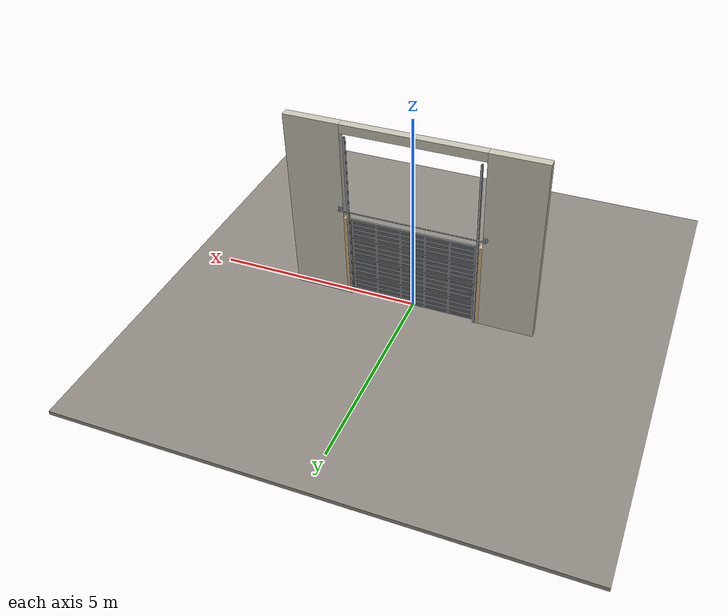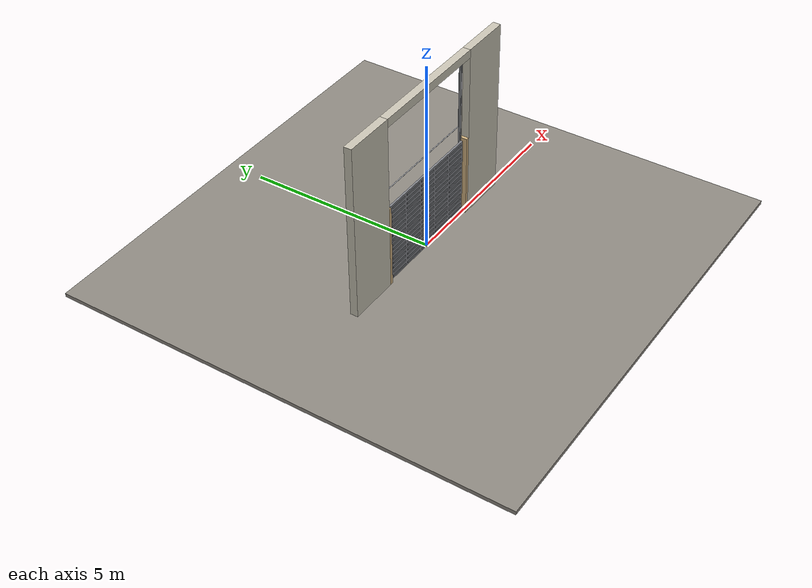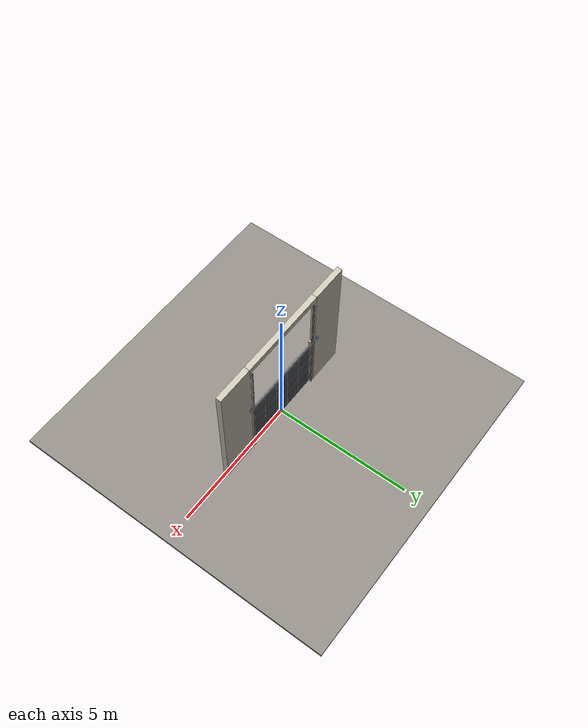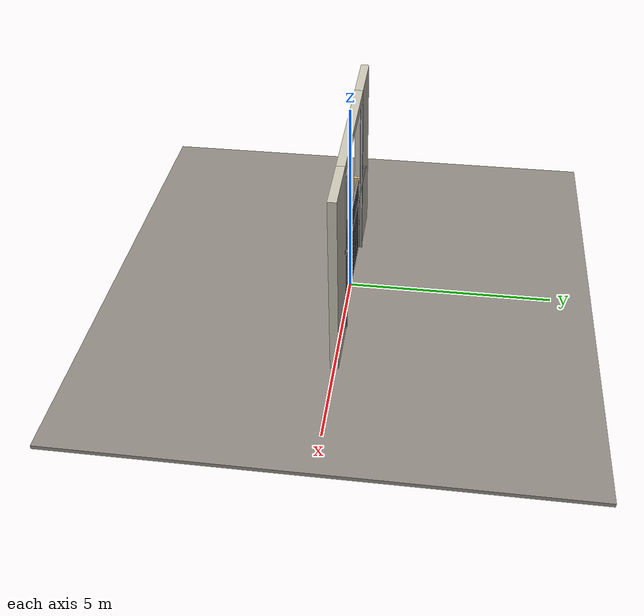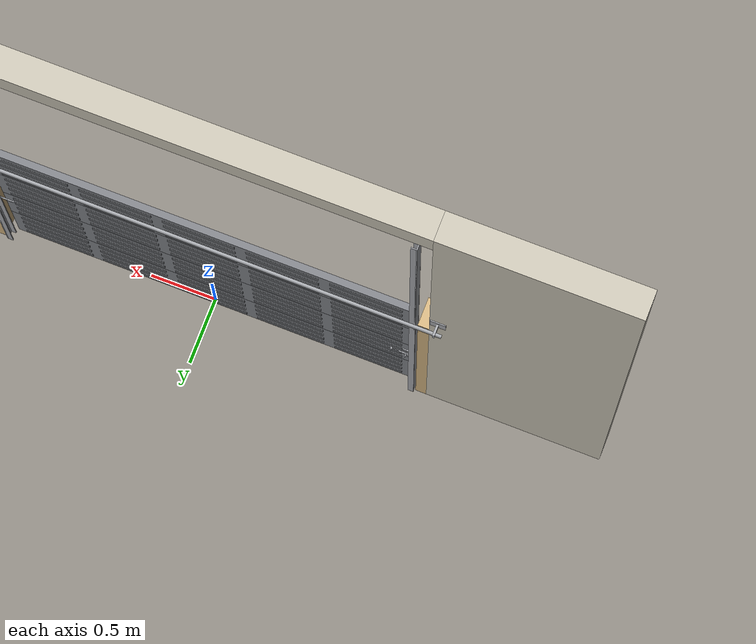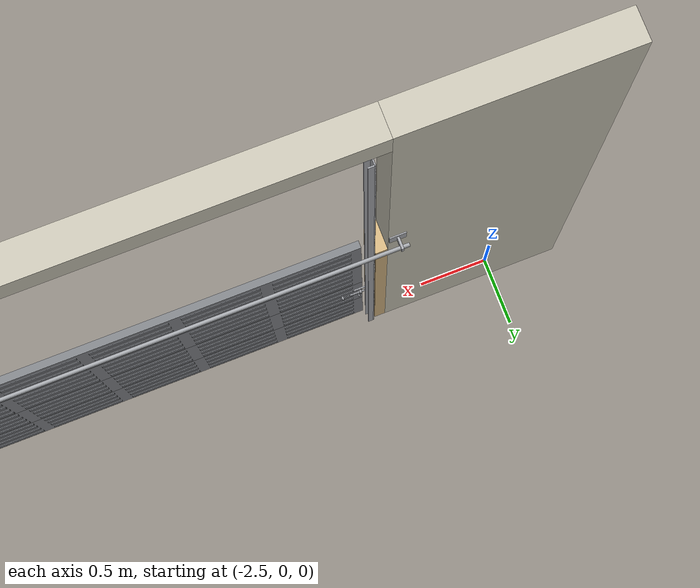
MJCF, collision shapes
<?xml version="1.0" ?>
<mujoco model="db0213_garage_sectional_simple">
  <compiler angle="radian" meshdir="../../hardware" texturedir="../../textures" autolimits="true" inertiafromgeom="false"/>
  <option timestep="0.002" integrator="implicitfast" cone="elliptic" impratio="10" noslip_iterations="3">
    <flag multiccd="enable"/>
  </option>
  <size memory="16M"/>
  <default>
    <geom condim="4" solref="0.005 1" solimp="0.95 0.99 0.001"/>
    <joint solreflimit="0.005 1" solimplimit="0.95 0.99 0.001"/>
    <tendon solreflimit="0.005 1"/>
    <equality solref="0.002 1"/>
  </default>
  <visual>
    <headlight ambient="0.4 0.4 0.4" diffuse="0.7 0.7 0.7" specular="0.2 0.2 0.2"/>
    <quality shadowsize="4096"/>
    <map znear="0.01" zfar="60"/>
  </visual>
  <asset>
    <mesh name="lever_01c630149d" file="lever_01c630149d.obj"/>
    <material name="mat_floor" rgba="0.55 0.53 0.5 1" specular="0.2" shininess="0.15" reflectance="0"/>
    <material name="mat_wall" rgba="0.78 0.76 0.7 1" specular="0.2" shininess="0.1" reflectance="0"/>
    <material name="mat_frame" rgba="0.82 0.7 0.5 1" specular="0.2" shininess="0.45" reflectance="0"/>
    <material name="mat_track" rgba="0.65 0.66 0.68 1" specular="0.74" shininess="0.5" reflectance="0.36"/>
    <material name="mat_section_0" rgba="0.5 0.51 0.53 1" specular="0.23" shininess="0.63" reflectance="0.02"/>
    <material name="mat_section_0_panel" rgba="0.46 0.469 0.488 1" specular="0.23" shininess="0.63" reflectance="0.02"/>
    <material name="mat_section_1" rgba="0.5 0.51 0.53 1" specular="0.23" shininess="0.63" reflectance="0.02"/>
    <material name="mat_section_1_panel" rgba="0.46 0.469 0.488 1" specular="0.23" shininess="0.63" reflectance="0.02"/>
    <material name="mat_hinge_line" rgba="0.2 0.2 0.2 1" specular="0.2" shininess="0.3" reflectance="0"/>
    <material name="mat_section_2" rgba="0.5 0.51 0.53 1" specular="0.23" shininess="0.63" reflectance="0.02"/>
    <material name="mat_section_2_panel" rgba="0.46 0.469 0.488 1" specular="0.23" shininess="0.63" reflectance="0.02"/>
    <material name="mat_section_3" rgba="0.5 0.51 0.53 1" specular="0.23" shininess="0.63" reflectance="0.02"/>
    <material name="mat_section_3_panel" rgba="0.46 0.469 0.488 1" specular="0.23" shininess="0.63" reflectance="0.02"/>
    <material name="mat_spring" rgba="0.55 0.56 0.58 1" specular="0.8" shininess="0.55" reflectance="0.4"/>
    <material name="mat_op_black_matte_metal" rgba="0.05 0.05 0.05 1" specular="0.38" shininess="0.3" reflectance="0.12"/>
    <material name="mat_trim" rgba="0.85 0.66 0.3 1" specular="0.8" shininess="0.75" reflectance="0.4"/>
    <material name="mat_lockbar" rgba="0.65 0.66 0.68 1" specular="0.74" shininess="0.5" reflectance="0.36"/>
    <material name="mat_slidelock" rgba="0.65 0.66 0.68 1" specular="0.74" shininess="0.5" reflectance="0.36"/>
    <texture name="skybox" type="skybox" builtin="gradient" rgb1="0.6 0.7 0.85" rgb2="0.9 0.92 0.95" width="256" height="256"/>
  </asset>
  <worldbody>
    <light name="sun" pos="1.5 -2.5 4" dir="-0.3 0.5 -0.8" directional="true" diffuse="0.8 0.8 0.8" specular="0.3 0.3 0.3" castshadow="true"/>
    <light name="fill" pos="-1.5 2.5 3" dir="0.3 -0.5 -0.7" directional="true" diffuse="0.35 0.35 0.4" castshadow="false"/>
    <camera name="robot_view" pos="0 -3.53125 2.07875" xyaxes="1 0 0 0 0.26963 0.962964" fovy="52"/>
    <camera name="far_view" pos="0 3.53125 2.07875" xyaxes="-1 0 0 0 -0.26963 0.962964" fovy="52"/>
    <camera name="iso" pos="2.68375 -2.96625 2.64375" xyaxes="0.741536 0.670913 0 -0.242917 0.268487 0.932151" fovy="46"/>
    <camera name="detail_handle" pos="0.2115 -1.165 1.25" xyaxes="0.975133 0.221621 0 -0.065674 0.288965 0.955084" fovy="38"/>
    <geom name="floor" type="box" size="6 6 0.05" pos="0 0 -0.05" material="mat_floor" group="0" contype="1" conaffinity="1" friction="0.8 0.005 0.0001" density="2400"/>
    <geom name="wall_left" type="box" size="0.665 0.1 2.305" pos="-2.335 0 2.305" material="mat_wall" group="0" contype="1" conaffinity="1" friction="0.6 0.005 0.0001" density="800"/>
    <geom name="wall_right" type="box" size="0.665 0.1 2.305" pos="2.335 0 2.305" material="mat_wall" group="0" contype="1" conaffinity="1" friction="0.6 0.005 0.0001" density="800"/>
    <geom name="wall_header" type="box" size="1.67 0.1 0.11" pos="0 0 4.5" material="mat_wall" group="0" contype="1" conaffinity="1" friction="0.6 0.005 0.0001" density="800"/>
    <geom name="garage_jamb_l" type="box" size="0.04 0.1 1.09" pos="-1.63 0 1.09" material="mat_frame" group="0" contype="1" conaffinity="1" friction="0.6 0.005 0.0001" density="400"/>
    <geom name="garage_jamb_r" type="box" size="0.04 0.1 1.09" pos="1.63 0 1.09" material="mat_frame" group="0" contype="1" conaffinity="1" friction="0.6 0.005 0.0001" density="400"/>
    <geom name="track_l" type="box" size="0.004 0.033 2.155" pos="-1.575 0.085 2.155" material="mat_track" group="0" contype="1" conaffinity="1" friction="0.6 0.005 0.0001" density="7850"/>
    <geom name="track_l_flange_n" type="box" size="0.022 0.004 2.155" pos="-1.557 0.056 2.155" material="mat_track" group="0" contype="1" conaffinity="1" friction="0.6 0.005 0.0001" density="7850"/>
    <geom name="track_l_flange_p" type="box" size="0.022 0.004 2.155" pos="-1.557 0.114 2.155" material="mat_track" group="0" contype="1" conaffinity="1" friction="0.6 0.005 0.0001" density="7850"/>
    <geom name="track_r" type="box" size="0.004 0.033 2.155" pos="1.575 0.085 2.155" material="mat_track" group="0" contype="1" conaffinity="1" friction="0.6 0.005 0.0001" density="7850"/>
    <geom name="track_r_flange_n" type="box" size="0.022 0.004 2.155" pos="1.557 0.056 2.155" material="mat_track" group="0" contype="1" conaffinity="1" friction="0.6 0.005 0.0001" density="7850"/>
    <geom name="track_r_flange_p" type="box" size="0.022 0.004 2.155" pos="1.557 0.114 2.155" material="mat_track" group="0" contype="1" conaffinity="1" friction="0.6 0.005 0.0001" density="7850"/>
    <geom name="torsion_shaft" type="cylinder" size="0.013 1.78" pos="0 0.17 2.43" quat="0.707107 0 0.707107 0" material="mat_track" group="0" contype="1" conaffinity="1" friction="0.6 0.005 0.0001" density="7850"/>
    <geom name="torsion_bearing_plate_l" type="box" size="0.055 0.004 0.055" pos="-1.73 0.104 2.43" material="mat_track" group="1" contype="0" conaffinity="0" density="7850"/>
    <geom name="torsion_bearing_arm_l" type="box" size="0.008 0.049 0.03" pos="-1.73 0.139 2.43" material="mat_track" group="1" contype="0" conaffinity="0" density="7850"/>
    <geom name="torsion_bearing_plate_r" type="box" size="0.055 0.004 0.055" pos="1.73 0.104 2.43" material="mat_track" group="1" contype="0" conaffinity="0" density="7850"/>
    <geom name="torsion_bearing_arm_r" type="box" size="0.008 0.049 0.03" pos="1.73 0.139 2.43" material="mat_track" group="1" contype="0" conaffinity="0" density="7850"/>
    <geom name="slide_lock_keeper_leg_n" type="box" size="0.007 0.0025 0.0155" pos="-1.57 0.0365 0.82025" quat="0 0 -0.707107 0.707107" material="mat_track" group="0" contype="1" conaffinity="1" friction="0.6 0.005 0.0001" density="7800"/>
    <geom name="slide_lock_keeper_leg_p" type="box" size="0.007 0.0025 0.0155" pos="-1.57 0.0365 0.79725" quat="0 0 -0.707107 0.707107" material="mat_track" group="0" contype="1" conaffinity="1" friction="0.6 0.005 0.0001" density="7800"/>
    <geom name="slide_lock_keeper_bridge" type="box" size="0.007 0.014 0.0025" pos="-1.57 0.0235 0.80875" quat="0 0 -0.707107 0.707107" material="mat_track" group="0" contype="1" conaffinity="1" friction="0.6 0.005 0.0001" density="7800"/>
    <geom name="slide_lock_keeper_base" type="box" size="0.015 0.02 0.001" pos="-1.57 0.051 0.80875" quat="0 0 -0.707107 0.707107" material="mat_track" group="1" contype="0" conaffinity="0" density="7800"/>
    <site name="approach_point" pos="0 -2 0" quat="1 0 0 0" size="0.05" rgba="0.2 0.9 0.2 0.5" group="4"/>
    <site name="goal_point" pos="0 2 0" quat="1 0 0 0" size="0.05" rgba="0.2 0.9 0.2 0.5" group="4"/>
    <site name="door_plane_center" pos="0 0 1.09" quat="1 0 0 0" size="0.02" rgba="0.2 0.9 0.2 0.5" group="4"/>
    <body name="door" pos="0 0 0">
      <inertial pos="-0.002369 0.000051 1.074563" mass="86.503393" quat="0.707119 -0.707094 -0.000523 -0.000591" diaginertia="32.679139132 67.260983986 99.903817033"/>
      <joint name="door_slide" type="slide" axis="0 0 1" limited="true" range="0 2.08" damping="6.358421" frictionloss="22.225584" armature="0.5"/>
      <geom name="section_0_slab" type="box" size="1.525 0.025 0.26625" pos="0 0 0.27625" material="mat_section_0" group="0" contype="1" conaffinity="1" friction="0.4 0.005 0.0001" density="1"/>
      <geom name="section_0_panel_0_n" type="box" size="0.259 0.003 0.024062" pos="-1.196 -0.028 0.084062" material="mat_section_0_panel" group="1" contype="0" conaffinity="0" density="1"/>
      <geom name="section_0_panel_0_p" type="box" size="0.259 0.003 0.024062" pos="-1.196 0.028 0.084062" material="mat_section_0_panel" group="1" contype="0" conaffinity="0" density="1"/>
      <geom name="section_0_panel_1_n" type="box" size="0.259 0.003 0.024062" pos="-0.598 -0.028 0.084062" material="mat_section_0_panel" group="1" contype="0" conaffinity="0" density="1"/>
      <geom name="section_0_panel_1_p" type="box" size="0.259 0.003 0.024062" pos="-0.598 0.028 0.084062" material="mat_section_0_panel" group="1" contype="0" conaffinity="0" density="1"/>
      <geom name="section_0_panel_2_n" type="box" size="0.259 0.003 0.024062" pos="0 -0.028 0.084062" material="mat_section_0_panel" group="1" contype="0" conaffinity="0" density="1"/>
      <geom name="section_0_panel_2_p" type="box" size="0.259 0.003 0.024062" pos="0 0.028 0.084062" material="mat_section_0_panel" group="1" contype="0" conaffinity="0" density="1"/>
      <geom name="section_0_panel_3_n" type="box" size="0.259 0.003 0.024062" pos="0.598 -0.028 0.084062" material="mat_section_0_panel" group="1" contype="0" conaffinity="0" density="1"/>
      <geom name="section_0_panel_3_p" type="box" size="0.259 0.003 0.024062" pos="0.598 0.028 0.084062" material="mat_section_0_panel" group="1" contype="0" conaffinity="0" density="1"/>
      <geom name="section_0_panel_4_n" type="box" size="0.259 0.003 0.024062" pos="1.196 -0.028 0.084062" material="mat_section_0_panel" group="1" contype="0" conaffinity="0" density="1"/>
      <geom name="section_0_panel_4_p" type="box" size="0.259 0.003 0.024062" pos="1.196 0.028 0.084062" material="mat_section_0_panel" group="1" contype="0" conaffinity="0" density="1"/>
      <geom name="section_0_panel_5_n" type="box" size="0.259 0.003 0.024062" pos="-1.196 -0.028 0.212188" material="mat_section_0_panel" group="1" contype="0" conaffinity="0" density="1"/>
      <geom name="section_0_panel_5_p" type="box" size="0.259 0.003 0.024062" pos="-1.196 0.028 0.212188" material="mat_section_0_panel" group="1" contype="0" conaffinity="0" density="1"/>
      <geom name="section_0_panel_6_n" type="box" size="0.259 0.003 0.024062" pos="-0.598 -0.028 0.212188" material="mat_section_0_panel" group="1" contype="0" conaffinity="0" density="1"/>
      <geom name="section_0_panel_6_p" type="box" size="0.259 0.003 0.024062" pos="-0.598 0.028 0.212188" material="mat_section_0_panel" group="1" contype="0" conaffinity="0" density="1"/>
      <geom name="section_0_panel_7_n" type="box" size="0.259 0.003 0.024062" pos="0 -0.028 0.212188" material="mat_section_0_panel" group="1" contype="0" conaffinity="0" density="1"/>
      <geom name="section_0_panel_7_p" type="box" size="0.259 0.003 0.024062" pos="0 0.028 0.212188" material="mat_section_0_panel" group="1" contype="0" conaffinity="0" density="1"/>
      <geom name="section_0_panel_8_n" type="box" size="0.259 0.003 0.024062" pos="0.598 -0.028 0.212188" material="mat_section_0_panel" group="1" contype="0" conaffinity="0" density="1"/>
      <geom name="section_0_panel_8_p" type="box" size="0.259 0.003 0.024062" pos="0.598 0.028 0.212188" material="mat_section_0_panel" group="1" contype="0" conaffinity="0" density="1"/>
      <geom name="section_0_panel_9_n" type="box" size="0.259 0.003 0.024062" pos="1.196 -0.028 0.212188" material="mat_section_0_panel" group="1" contype="0" conaffinity="0" density="1"/>
      <geom name="section_0_panel_9_p" type="box" size="0.259 0.003 0.024062" pos="1.196 0.028 0.212188" material="mat_section_0_panel" group="1" contype="0" conaffinity="0" density="1"/>
      <geom name="section_0_panel_10_n" type="box" size="0.259 0.003 0.024062" pos="-1.196 -0.028 0.340313" material="mat_section_0_panel" group="1" contype="0" conaffinity="0" density="1"/>
      <geom name="section_0_panel_10_p" type="box" size="0.259 0.003 0.024062" pos="-1.196 0.028 0.340313" material="mat_section_0_panel" group="1" contype="0" conaffinity="0" density="1"/>
      <geom name="section_0_panel_11_n" type="box" size="0.259 0.003 0.024062" pos="-0.598 -0.028 0.340313" material="mat_section_0_panel" group="1" contype="0" conaffinity="0" density="1"/>
      <geom name="section_0_panel_11_p" type="box" size="0.259 0.003 0.024062" pos="-0.598 0.028 0.340313" material="mat_section_0_panel" group="1" contype="0" conaffinity="0" density="1"/>
      <geom name="section_0_panel_12_n" type="box" size="0.259 0.003 0.024062" pos="0 -0.028 0.340313" material="mat_section_0_panel" group="1" contype="0" conaffinity="0" density="1"/>
      <geom name="section_0_panel_12_p" type="box" size="0.259 0.003 0.024062" pos="0 0.028 0.340313" material="mat_section_0_panel" group="1" contype="0" conaffinity="0" density="1"/>
      <geom name="section_0_panel_13_n" type="box" size="0.259 0.003 0.024062" pos="0.598 -0.028 0.340313" material="mat_section_0_panel" group="1" contype="0" conaffinity="0" density="1"/>
      <geom name="section_0_panel_13_p" type="box" size="0.259 0.003 0.024062" pos="0.598 0.028 0.340313" material="mat_section_0_panel" group="1" contype="0" conaffinity="0" density="1"/>
      <geom name="section_0_panel_14_n" type="box" size="0.259 0.003 0.024062" pos="1.196 -0.028 0.340313" material="mat_section_0_panel" group="1" contype="0" conaffinity="0" density="1"/>
      <geom name="section_0_panel_14_p" type="box" size="0.259 0.003 0.024062" pos="1.196 0.028 0.340313" material="mat_section_0_panel" group="1" contype="0" conaffinity="0" density="1"/>
      <geom name="section_0_panel_15_n" type="box" size="0.259 0.003 0.024062" pos="-1.196 -0.028 0.468437" material="mat_section_0_panel" group="1" contype="0" conaffinity="0" density="1"/>
      <geom name="section_0_panel_15_p" type="box" size="0.259 0.003 0.024062" pos="-1.196 0.028 0.468437" material="mat_section_0_panel" group="1" contype="0" conaffinity="0" density="1"/>
      <geom name="section_0_panel_16_n" type="box" size="0.259 0.003 0.024062" pos="-0.598 -0.028 0.468437" material="mat_section_0_panel" group="1" contype="0" conaffinity="0" density="1"/>
      <geom name="section_0_panel_16_p" type="box" size="0.259 0.003 0.024062" pos="-0.598 0.028 0.468437" material="mat_section_0_panel" group="1" contype="0" conaffinity="0" density="1"/>
      <geom name="section_0_panel_17_n" type="box" size="0.259 0.003 0.024062" pos="0 -0.028 0.468437" material="mat_section_0_panel" group="1" contype="0" conaffinity="0" density="1"/>
      <geom name="section_0_panel_17_p" type="box" size="0.259 0.003 0.024062" pos="0 0.028 0.468437" material="mat_section_0_panel" group="1" contype="0" conaffinity="0" density="1"/>
      <geom name="section_0_panel_18_n" type="box" size="0.259 0.003 0.024062" pos="0.598 -0.028 0.468437" material="mat_section_0_panel" group="1" contype="0" conaffinity="0" density="1"/>
      <geom name="section_0_panel_18_p" type="box" size="0.259 0.003 0.024062" pos="0.598 0.028 0.468437" material="mat_section_0_panel" group="1" contype="0" conaffinity="0" density="1"/>
      <geom name="section_0_panel_19_n" type="box" size="0.259 0.003 0.024062" pos="1.196 -0.028 0.468437" material="mat_section_0_panel" group="1" contype="0" conaffinity="0" density="1"/>
      <geom name="section_0_panel_19_p" type="box" size="0.259 0.003 0.024062" pos="1.196 0.028 0.468437" material="mat_section_0_panel" group="1" contype="0" conaffinity="0" density="1"/>
      <geom name="section_1_slab" type="box" size="1.525 0.025 0.26625" pos="0 0 0.80875" material="mat_section_1" group="0" contype="1" conaffinity="1" friction="0.4 0.005 0.0001" density="1"/>
      <geom name="section_1_panel_0_n" type="box" size="0.259 0.003 0.024062" pos="-1.196 -0.028 0.616563" material="mat_section_1_panel" group="1" contype="0" conaffinity="0" density="1"/>
      <geom name="section_1_panel_0_p" type="box" size="0.259 0.003 0.024062" pos="-1.196 0.028 0.616563" material="mat_section_1_panel" group="1" contype="0" conaffinity="0" density="1"/>
      <geom name="section_1_panel_1_n" type="box" size="0.259 0.003 0.024062" pos="-0.598 -0.028 0.616563" material="mat_section_1_panel" group="1" contype="0" conaffinity="0" density="1"/>
      <geom name="section_1_panel_1_p" type="box" size="0.259 0.003 0.024062" pos="-0.598 0.028 0.616563" material="mat_section_1_panel" group="1" contype="0" conaffinity="0" density="1"/>
      <geom name="section_1_panel_2_n" type="box" size="0.259 0.003 0.024062" pos="0 -0.028 0.616563" material="mat_section_1_panel" group="1" contype="0" conaffinity="0" density="1"/>
      <geom name="section_1_panel_2_p" type="box" size="0.259 0.003 0.024062" pos="0 0.028 0.616563" material="mat_section_1_panel" group="1" contype="0" conaffinity="0" density="1"/>
      <geom name="section_1_panel_3_n" type="box" size="0.259 0.003 0.024062" pos="0.598 -0.028 0.616563" material="mat_section_1_panel" group="1" contype="0" conaffinity="0" density="1"/>
      <geom name="section_1_panel_3_p" type="box" size="0.259 0.003 0.024062" pos="0.598 0.028 0.616563" material="mat_section_1_panel" group="1" contype="0" conaffinity="0" density="1"/>
      <geom name="section_1_panel_4_n" type="box" size="0.259 0.003 0.024062" pos="1.196 -0.028 0.616563" material="mat_section_1_panel" group="1" contype="0" conaffinity="0" density="1"/>
      <geom name="section_1_panel_4_p" type="box" size="0.259 0.003 0.024062" pos="1.196 0.028 0.616563" material="mat_section_1_panel" group="1" contype="0" conaffinity="0" density="1"/>
      <geom name="section_1_panel_5_n" type="box" size="0.259 0.003 0.024062" pos="-1.196 -0.028 0.744687" material="mat_section_1_panel" group="1" contype="0" conaffinity="0" density="1"/>
      <geom name="section_1_panel_5_p" type="box" size="0.259 0.003 0.024062" pos="-1.196 0.028 0.744687" material="mat_section_1_panel" group="1" contype="0" conaffinity="0" density="1"/>
      <geom name="section_1_panel_6_n" type="box" size="0.259 0.003 0.024062" pos="-0.598 -0.028 0.744687" material="mat_section_1_panel" group="1" contype="0" conaffinity="0" density="1"/>
      <geom name="section_1_panel_6_p" type="box" size="0.259 0.003 0.024062" pos="-0.598 0.028 0.744687" material="mat_section_1_panel" group="1" contype="0" conaffinity="0" density="1"/>
      <geom name="section_1_panel_7_n" type="box" size="0.259 0.003 0.024062" pos="0 -0.028 0.744687" material="mat_section_1_panel" group="1" contype="0" conaffinity="0" density="1"/>
      <geom name="section_1_panel_7_p" type="box" size="0.259 0.003 0.024062" pos="0 0.028 0.744687" material="mat_section_1_panel" group="1" contype="0" conaffinity="0" density="1"/>
      <geom name="section_1_panel_8_n" type="box" size="0.259 0.003 0.024062" pos="0.598 -0.028 0.744687" material="mat_section_1_panel" group="1" contype="0" conaffinity="0" density="1"/>
      <geom name="section_1_panel_8_p" type="box" size="0.259 0.003 0.024062" pos="0.598 0.028 0.744687" material="mat_section_1_panel" group="1" contype="0" conaffinity="0" density="1"/>
      <geom name="section_1_panel_9_n" type="box" size="0.259 0.003 0.024062" pos="1.196 -0.028 0.744687" material="mat_section_1_panel" group="1" contype="0" conaffinity="0" density="1"/>
      <geom name="section_1_panel_9_p" type="box" size="0.259 0.003 0.024062" pos="1.196 0.028 0.744687" material="mat_section_1_panel" group="1" contype="0" conaffinity="0" density="1"/>
      <geom name="section_1_panel_10_n" type="box" size="0.259 0.003 0.024062" pos="-1.196 -0.028 0.872812" material="mat_section_1_panel" group="1" contype="0" conaffinity="0" density="1"/>
      <geom name="section_1_panel_10_p" type="box" size="0.259 0.003 0.024062" pos="-1.196 0.028 0.872812" material="mat_section_1_panel" group="1" contype="0" conaffinity="0" density="1"/>
      <geom name="section_1_panel_11_n" type="box" size="0.259 0.003 0.024062" pos="-0.598 -0.028 0.872812" material="mat_section_1_panel" group="1" contype="0" conaffinity="0" density="1"/>
      <geom name="section_1_panel_11_p" type="box" size="0.259 0.003 0.024062" pos="-0.598 0.028 0.872812" material="mat_section_1_panel" group="1" contype="0" conaffinity="0" density="1"/>
      <geom name="section_1_panel_12_n" type="box" size="0.259 0.003 0.024062" pos="0 -0.028 0.872812" material="mat_section_1_panel" group="1" contype="0" conaffinity="0" density="1"/>
      <geom name="section_1_panel_12_p" type="box" size="0.259 0.003 0.024062" pos="0 0.028 0.872812" material="mat_section_1_panel" group="1" contype="0" conaffinity="0" density="1"/>
      <geom name="section_1_panel_13_n" type="box" size="0.259 0.003 0.024062" pos="0.598 -0.028 0.872812" material="mat_section_1_panel" group="1" contype="0" conaffinity="0" density="1"/>
      <geom name="section_1_panel_13_p" type="box" size="0.259 0.003 0.024062" pos="0.598 0.028 0.872812" material="mat_section_1_panel" group="1" contype="0" conaffinity="0" density="1"/>
      <geom name="section_1_panel_14_n" type="box" size="0.259 0.003 0.024062" pos="1.196 -0.028 0.872812" material="mat_section_1_panel" group="1" contype="0" conaffinity="0" density="1"/>
      <geom name="section_1_panel_14_p" type="box" size="0.259 0.003 0.024062" pos="1.196 0.028 0.872812" material="mat_section_1_panel" group="1" contype="0" conaffinity="0" density="1"/>
      <geom name="section_1_panel_15_n" type="box" size="0.259 0.003 0.024062" pos="-1.196 -0.028 1.000937" material="mat_section_1_panel" group="1" contype="0" conaffinity="0" density="1"/>
      <geom name="section_1_panel_15_p" type="box" size="0.259 0.003 0.024062" pos="-1.196 0.028 1.000937" material="mat_section_1_panel" group="1" contype="0" conaffinity="0" density="1"/>
      <geom name="section_1_panel_16_n" type="box" size="0.259 0.003 0.024062" pos="-0.598 -0.028 1.000937" material="mat_section_1_panel" group="1" contype="0" conaffinity="0" density="1"/>
      <geom name="section_1_panel_16_p" type="box" size="0.259 0.003 0.024062" pos="-0.598 0.028 1.000937" material="mat_section_1_panel" group="1" contype="0" conaffinity="0" density="1"/>
      <geom name="section_1_panel_17_n" type="box" size="0.259 0.003 0.024062" pos="0 -0.028 1.000937" material="mat_section_1_panel" group="1" contype="0" conaffinity="0" density="1"/>
      <geom name="section_1_panel_17_p" type="box" size="0.259 0.003 0.024062" pos="0 0.028 1.000937" material="mat_section_1_panel" group="1" contype="0" conaffinity="0" density="1"/>
      <geom name="section_1_panel_18_n" type="box" size="0.259 0.003 0.024062" pos="0.598 -0.028 1.000937" material="mat_section_1_panel" group="1" contype="0" conaffinity="0" density="1"/>
      <geom name="section_1_panel_18_p" type="box" size="0.259 0.003 0.024062" pos="0.598 0.028 1.000937" material="mat_section_1_panel" group="1" contype="0" conaffinity="0" density="1"/>
      <geom name="section_1_panel_19_n" type="box" size="0.259 0.003 0.024062" pos="1.196 -0.028 1.000937" material="mat_section_1_panel" group="1" contype="0" conaffinity="0" density="1"/>
      <geom name="section_1_panel_19_p" type="box" size="0.259 0.003 0.024062" pos="1.196 0.028 1.000937" material="mat_section_1_panel" group="1" contype="0" conaffinity="0" density="1"/>
      <geom name="section_2_slab" type="box" size="1.525 0.025 0.26625" pos="0 0 1.34125" material="mat_section_2" group="0" contype="1" conaffinity="1" friction="0.4 0.005 0.0001" density="1"/>
      <geom name="section_2_panel_0_n" type="box" size="0.259 0.003 0.024062" pos="-1.196 -0.028 1.149062" material="mat_section_2_panel" group="1" contype="0" conaffinity="0" density="1"/>
      <geom name="section_2_panel_0_p" type="box" size="0.259 0.003 0.024062" pos="-1.196 0.028 1.149062" material="mat_section_2_panel" group="1" contype="0" conaffinity="0" density="1"/>
      <geom name="section_2_panel_1_n" type="box" size="0.259 0.003 0.024062" pos="-0.598 -0.028 1.149062" material="mat_section_2_panel" group="1" contype="0" conaffinity="0" density="1"/>
      <geom name="section_2_panel_1_p" type="box" size="0.259 0.003 0.024062" pos="-0.598 0.028 1.149062" material="mat_section_2_panel" group="1" contype="0" conaffinity="0" density="1"/>
      <geom name="section_2_panel_2_n" type="box" size="0.259 0.003 0.024062" pos="0 -0.028 1.149062" material="mat_section_2_panel" group="1" contype="0" conaffinity="0" density="1"/>
      <geom name="section_2_panel_2_p" type="box" size="0.259 0.003 0.024062" pos="0 0.028 1.149062" material="mat_section_2_panel" group="1" contype="0" conaffinity="0" density="1"/>
      <geom name="section_2_panel_3_n" type="box" size="0.259 0.003 0.024062" pos="0.598 -0.028 1.149062" material="mat_section_2_panel" group="1" contype="0" conaffinity="0" density="1"/>
      <geom name="section_2_panel_3_p" type="box" size="0.259 0.003 0.024062" pos="0.598 0.028 1.149062" material="mat_section_2_panel" group="1" contype="0" conaffinity="0" density="1"/>
      <geom name="section_2_panel_4_n" type="box" size="0.259 0.003 0.024062" pos="1.196 -0.028 1.149062" material="mat_section_2_panel" group="1" contype="0" conaffinity="0" density="1"/>
      <geom name="section_2_panel_4_p" type="box" size="0.259 0.003 0.024062" pos="1.196 0.028 1.149062" material="mat_section_2_panel" group="1" contype="0" conaffinity="0" density="1"/>
      <geom name="section_2_panel_5_n" type="box" size="0.259 0.003 0.024062" pos="-1.196 -0.028 1.277187" material="mat_section_2_panel" group="1" contype="0" conaffinity="0" density="1"/>
      <geom name="section_2_panel_5_p" type="box" size="0.259 0.003 0.024062" pos="-1.196 0.028 1.277187" material="mat_section_2_panel" group="1" contype="0" conaffinity="0" density="1"/>
      <geom name="section_2_panel_6_n" type="box" size="0.259 0.003 0.024062" pos="-0.598 -0.028 1.277187" material="mat_section_2_panel" group="1" contype="0" conaffinity="0" density="1"/>
      <geom name="section_2_panel_6_p" type="box" size="0.259 0.003 0.024062" pos="-0.598 0.028 1.277187" material="mat_section_2_panel" group="1" contype="0" conaffinity="0" density="1"/>
      <geom name="section_2_panel_7_n" type="box" size="0.259 0.003 0.024062" pos="0 -0.028 1.277187" material="mat_section_2_panel" group="1" contype="0" conaffinity="0" density="1"/>
      <geom name="section_2_panel_7_p" type="box" size="0.259 0.003 0.024062" pos="0 0.028 1.277187" material="mat_section_2_panel" group="1" contype="0" conaffinity="0" density="1"/>
      <geom name="section_2_panel_8_n" type="box" size="0.259 0.003 0.024062" pos="0.598 -0.028 1.277187" material="mat_section_2_panel" group="1" contype="0" conaffinity="0" density="1"/>
      <geom name="section_2_panel_8_p" type="box" size="0.259 0.003 0.024062" pos="0.598 0.028 1.277187" material="mat_section_2_panel" group="1" contype="0" conaffinity="0" density="1"/>
      <geom name="section_2_panel_9_n" type="box" size="0.259 0.003 0.024062" pos="1.196 -0.028 1.277187" material="mat_section_2_panel" group="1" contype="0" conaffinity="0" density="1"/>
      <geom name="section_2_panel_9_p" type="box" size="0.259 0.003 0.024062" pos="1.196 0.028 1.277187" material="mat_section_2_panel" group="1" contype="0" conaffinity="0" density="1"/>
      <geom name="section_2_panel_10_n" type="box" size="0.259 0.003 0.024062" pos="-1.196 -0.028 1.405312" material="mat_section_2_panel" group="1" contype="0" conaffinity="0" density="1"/>
      <geom name="section_2_panel_10_p" type="box" size="0.259 0.003 0.024062" pos="-1.196 0.028 1.405312" material="mat_section_2_panel" group="1" contype="0" conaffinity="0" density="1"/>
      <geom name="section_2_panel_11_n" type="box" size="0.259 0.003 0.024062" pos="-0.598 -0.028 1.405312" material="mat_section_2_panel" group="1" contype="0" conaffinity="0" density="1"/>
      <geom name="section_2_panel_11_p" type="box" size="0.259 0.003 0.024062" pos="-0.598 0.028 1.405312" material="mat_section_2_panel" group="1" contype="0" conaffinity="0" density="1"/>
      <geom name="section_2_panel_12_n" type="box" size="0.259 0.003 0.024062" pos="0 -0.028 1.405312" material="mat_section_2_panel" group="1" contype="0" conaffinity="0" density="1"/>
      <geom name="section_2_panel_12_p" type="box" size="0.259 0.003 0.024062" pos="0 0.028 1.405312" material="mat_section_2_panel" group="1" contype="0" conaffinity="0" density="1"/>
      <geom name="section_2_panel_13_n" type="box" size="0.259 0.003 0.024062" pos="0.598 -0.028 1.405312" material="mat_section_2_panel" group="1" contype="0" conaffinity="0" density="1"/>
      <geom name="section_2_panel_13_p" type="box" size="0.259 0.003 0.024062" pos="0.598 0.028 1.405312" material="mat_section_2_panel" group="1" contype="0" conaffinity="0" density="1"/>
      <geom name="section_2_panel_14_n" type="box" size="0.259 0.003 0.024062" pos="1.196 -0.028 1.405312" material="mat_section_2_panel" group="1" contype="0" conaffinity="0" density="1"/>
      <geom name="section_2_panel_14_p" type="box" size="0.259 0.003 0.024062" pos="1.196 0.028 1.405312" material="mat_section_2_panel" group="1" contype="0" conaffinity="0" density="1"/>
      <geom name="section_2_panel_15_n" type="box" size="0.259 0.003 0.024062" pos="-1.196 -0.028 1.533437" material="mat_section_2_panel" group="1" contype="0" conaffinity="0" density="1"/>
      <geom name="section_2_panel_15_p" type="box" size="0.259 0.003 0.024062" pos="-1.196 0.028 1.533437" material="mat_section_2_panel" group="1" contype="0" conaffinity="0" density="1"/>
      <geom name="section_2_panel_16_n" type="box" size="0.259 0.003 0.024062" pos="-0.598 -0.028 1.533437" material="mat_section_2_panel" group="1" contype="0" conaffinity="0" density="1"/>
      <geom name="section_2_panel_16_p" type="box" size="0.259 0.003 0.024062" pos="-0.598 0.028 1.533437" material="mat_section_2_panel" group="1" contype="0" conaffinity="0" density="1"/>
      <geom name="section_2_panel_17_n" type="box" size="0.259 0.003 0.024062" pos="0 -0.028 1.533437" material="mat_section_2_panel" group="1" contype="0" conaffinity="0" density="1"/>
      <geom name="section_2_panel_17_p" type="box" size="0.259 0.003 0.024062" pos="0 0.028 1.533437" material="mat_section_2_panel" group="1" contype="0" conaffinity="0" density="1"/>
      <geom name="section_2_panel_18_n" type="box" size="0.259 0.003 0.024062" pos="0.598 -0.028 1.533437" material="mat_section_2_panel" group="1" contype="0" conaffinity="0" density="1"/>
      <geom name="section_2_panel_18_p" type="box" size="0.259 0.003 0.024062" pos="0.598 0.028 1.533437" material="mat_section_2_panel" group="1" contype="0" conaffinity="0" density="1"/>
      <geom name="section_2_panel_19_n" type="box" size="0.259 0.003 0.024062" pos="1.196 -0.028 1.533437" material="mat_section_2_panel" group="1" contype="0" conaffinity="0" density="1"/>
      <geom name="section_2_panel_19_p" type="box" size="0.259 0.003 0.024062" pos="1.196 0.028 1.533437" material="mat_section_2_panel" group="1" contype="0" conaffinity="0" density="1"/>
      <geom name="section_3_slab" type="box" size="1.525 0.025 0.26625" pos="0 0 1.87375" material="mat_section_3" group="0" contype="1" conaffinity="1" friction="0.4 0.005 0.0001" density="1"/>
      <geom name="section_3_panel_0_n" type="box" size="0.259 0.003 0.024062" pos="-1.196 -0.028 1.681562" material="mat_section_3_panel" group="1" contype="0" conaffinity="0" density="1"/>
      <geom name="section_3_panel_0_p" type="box" size="0.259 0.003 0.024062" pos="-1.196 0.028 1.681562" material="mat_section_3_panel" group="1" contype="0" conaffinity="0" density="1"/>
      <geom name="section_3_panel_1_n" type="box" size="0.259 0.003 0.024062" pos="-0.598 -0.028 1.681562" material="mat_section_3_panel" group="1" contype="0" conaffinity="0" density="1"/>
      <geom name="section_3_panel_1_p" type="box" size="0.259 0.003 0.024062" pos="-0.598 0.028 1.681562" material="mat_section_3_panel" group="1" contype="0" conaffinity="0" density="1"/>
      <geom name="section_3_panel_2_n" type="box" size="0.259 0.003 0.024062" pos="0 -0.028 1.681562" material="mat_section_3_panel" group="1" contype="0" conaffinity="0" density="1"/>
      <geom name="section_3_panel_2_p" type="box" size="0.259 0.003 0.024062" pos="0 0.028 1.681562" material="mat_section_3_panel" group="1" contype="0" conaffinity="0" density="1"/>
      <geom name="section_3_panel_3_n" type="box" size="0.259 0.003 0.024062" pos="0.598 -0.028 1.681562" material="mat_section_3_panel" group="1" contype="0" conaffinity="0" density="1"/>
      <geom name="section_3_panel_3_p" type="box" size="0.259 0.003 0.024062" pos="0.598 0.028 1.681562" material="mat_section_3_panel" group="1" contype="0" conaffinity="0" density="1"/>
      <geom name="section_3_panel_4_n" type="box" size="0.259 0.003 0.024062" pos="1.196 -0.028 1.681562" material="mat_section_3_panel" group="1" contype="0" conaffinity="0" density="1"/>
      <geom name="section_3_panel_4_p" type="box" size="0.259 0.003 0.024062" pos="1.196 0.028 1.681562" material="mat_section_3_panel" group="1" contype="0" conaffinity="0" density="1"/>
      <geom name="section_3_panel_5_n" type="box" size="0.259 0.003 0.024062" pos="-1.196 -0.028 1.809687" material="mat_section_3_panel" group="1" contype="0" conaffinity="0" density="1"/>
      <geom name="section_3_panel_5_p" type="box" size="0.259 0.003 0.024062" pos="-1.196 0.028 1.809687" material="mat_section_3_panel" group="1" contype="0" conaffinity="0" density="1"/>
      <geom name="section_3_panel_6_n" type="box" size="0.259 0.003 0.024062" pos="-0.598 -0.028 1.809687" material="mat_section_3_panel" group="1" contype="0" conaffinity="0" density="1"/>
      <geom name="section_3_panel_6_p" type="box" size="0.259 0.003 0.024062" pos="-0.598 0.028 1.809687" material="mat_section_3_panel" group="1" contype="0" conaffinity="0" density="1"/>
      <geom name="section_3_panel_7_n" type="box" size="0.259 0.003 0.024062" pos="0 -0.028 1.809687" material="mat_section_3_panel" group="1" contype="0" conaffinity="0" density="1"/>
      <geom name="section_3_panel_7_p" type="box" size="0.259 0.003 0.024062" pos="0 0.028 1.809687" material="mat_section_3_panel" group="1" contype="0" conaffinity="0" density="1"/>
      <geom name="section_3_panel_8_n" type="box" size="0.259 0.003 0.024062" pos="0.598 -0.028 1.809687" material="mat_section_3_panel" group="1" contype="0" conaffinity="0" density="1"/>
      <geom name="section_3_panel_8_p" type="box" size="0.259 0.003 0.024062" pos="0.598 0.028 1.809687" material="mat_section_3_panel" group="1" contype="0" conaffinity="0" density="1"/>
      <geom name="section_3_panel_9_n" type="box" size="0.259 0.003 0.024062" pos="1.196 -0.028 1.809687" material="mat_section_3_panel" group="1" contype="0" conaffinity="0" density="1"/>
      <geom name="section_3_panel_9_p" type="box" size="0.259 0.003 0.024062" pos="1.196 0.028 1.809687" material="mat_section_3_panel" group="1" contype="0" conaffinity="0" density="1"/>
      <geom name="section_3_panel_10_n" type="box" size="0.259 0.003 0.024062" pos="-1.196 -0.028 1.937812" material="mat_section_3_panel" group="1" contype="0" conaffinity="0" density="1"/>
      <geom name="section_3_panel_10_p" type="box" size="0.259 0.003 0.024062" pos="-1.196 0.028 1.937812" material="mat_section_3_panel" group="1" contype="0" conaffinity="0" density="1"/>
      <geom name="section_3_panel_11_n" type="box" size="0.259 0.003 0.024062" pos="-0.598 -0.028 1.937812" material="mat_section_3_panel" group="1" contype="0" conaffinity="0" density="1"/>
      <geom name="section_3_panel_11_p" type="box" size="0.259 0.003 0.024062" pos="-0.598 0.028 1.937812" material="mat_section_3_panel" group="1" contype="0" conaffinity="0" density="1"/>
      <geom name="section_3_panel_12_n" type="box" size="0.259 0.003 0.024062" pos="0 -0.028 1.937812" material="mat_section_3_panel" group="1" contype="0" conaffinity="0" density="1"/>
      <geom name="section_3_panel_12_p" type="box" size="0.259 0.003 0.024062" pos="0 0.028 1.937812" material="mat_section_3_panel" group="1" contype="0" conaffinity="0" density="1"/>
      <geom name="section_3_panel_13_n" type="box" size="0.259 0.003 0.024062" pos="0.598 -0.028 1.937812" material="mat_section_3_panel" group="1" contype="0" conaffinity="0" density="1"/>
      <geom name="section_3_panel_13_p" type="box" size="0.259 0.003 0.024062" pos="0.598 0.028 1.937812" material="mat_section_3_panel" group="1" contype="0" conaffinity="0" density="1"/>
      <geom name="section_3_panel_14_n" type="box" size="0.259 0.003 0.024062" pos="1.196 -0.028 1.937812" material="mat_section_3_panel" group="1" contype="0" conaffinity="0" density="1"/>
      <geom name="section_3_panel_14_p" type="box" size="0.259 0.003 0.024062" pos="1.196 0.028 1.937812" material="mat_section_3_panel" group="1" contype="0" conaffinity="0" density="1"/>
      <geom name="section_3_panel_15_n" type="box" size="0.259 0.003 0.024062" pos="-1.196 -0.028 2.065937" material="mat_section_3_panel" group="1" contype="0" conaffinity="0" density="1"/>
      <geom name="section_3_panel_15_p" type="box" size="0.259 0.003 0.024062" pos="-1.196 0.028 2.065937" material="mat_section_3_panel" group="1" contype="0" conaffinity="0" density="1"/>
      <geom name="section_3_panel_16_n" type="box" size="0.259 0.003 0.024062" pos="-0.598 -0.028 2.065937" material="mat_section_3_panel" group="1" contype="0" conaffinity="0" density="1"/>
      <geom name="section_3_panel_16_p" type="box" size="0.259 0.003 0.024062" pos="-0.598 0.028 2.065937" material="mat_section_3_panel" group="1" contype="0" conaffinity="0" density="1"/>
      <geom name="section_3_panel_17_n" type="box" size="0.259 0.003 0.024062" pos="0 -0.028 2.065937" material="mat_section_3_panel" group="1" contype="0" conaffinity="0" density="1"/>
      <geom name="section_3_panel_17_p" type="box" size="0.259 0.003 0.024062" pos="0 0.028 2.065937" material="mat_section_3_panel" group="1" contype="0" conaffinity="0" density="1"/>
      <geom name="section_3_panel_18_n" type="box" size="0.259 0.003 0.024062" pos="0.598 -0.028 2.065937" material="mat_section_3_panel" group="1" contype="0" conaffinity="0" density="1"/>
      <geom name="section_3_panel_18_p" type="box" size="0.259 0.003 0.024062" pos="0.598 0.028 2.065937" material="mat_section_3_panel" group="1" contype="0" conaffinity="0" density="1"/>
      <geom name="section_3_panel_19_n" type="box" size="0.259 0.003 0.024062" pos="1.196 -0.028 2.065937" material="mat_section_3_panel" group="1" contype="0" conaffinity="0" density="1"/>
      <geom name="section_3_panel_19_p" type="box" size="0.259 0.003 0.024062" pos="1.196 0.028 2.065937" material="mat_section_3_panel" group="1" contype="0" conaffinity="0" density="1"/>
      <geom name="garage_slide_lock_plate" type="box" size="0.0745 0.019 0.001" pos="-1.4425 0.026 0.80875" quat="0 0 0.707107 0.707107" material="mat_slidelock" group="1" contype="0" conaffinity="0" density="7800"/>
      <geom name="garage_slide_lock_guide_0_leg_n" type="box" size="0.006 0.002 0.0115" pos="-1.509 0.0365 0.79775" quat="0 0 0.707107 0.707107" material="mat_slidelock" group="1" contype="0" conaffinity="0" density="7800"/>
      <geom name="garage_slide_lock_guide_0_leg_p" type="box" size="0.006 0.002 0.0115" pos="-1.509 0.0365 0.81975" quat="0 0 0.707107 0.707107" material="mat_slidelock" group="1" contype="0" conaffinity="0" density="7800"/>
      <geom name="garage_slide_lock_guide_0_bridge" type="box" size="0.006 0.013 0.002" pos="-1.509 0.046 0.80875" quat="0 0 0.707107 0.707107" material="mat_slidelock" group="1" contype="0" conaffinity="0" density="7800"/>
      <geom name="garage_slide_lock_guide_1_leg_n" type="box" size="0.006 0.002 0.0115" pos="-1.378 0.0365 0.79775" quat="0 0 0.707107 0.707107" material="mat_slidelock" group="1" contype="0" conaffinity="0" density="7800"/>
      <geom name="garage_slide_lock_guide_1_leg_p" type="box" size="0.006 0.002 0.0115" pos="-1.378 0.0365 0.81975" quat="0 0 0.707107 0.707107" material="mat_slidelock" group="1" contype="0" conaffinity="0" density="7800"/>
      <geom name="garage_slide_lock_guide_1_bridge" type="box" size="0.006 0.013 0.002" pos="-1.378 0.046 0.80875" quat="0 0 0.707107 0.707107" material="mat_slidelock" group="1" contype="0" conaffinity="0" density="7800"/>
      <body name="t_handle" pos="0 0 0.9">
        <inertial pos="0 -0.054115 0" mass="0.254469" quat="1 0 0 0" diaginertia="0.000075558 0.000207252 0.000256627"/>
        <joint name="t_handle_hinge" type="hinge" axis="0 -1 0" limited="true" range="0 1.5708" damping="0.127805" frictionloss="0.028" stiffness="0.4" springref="-0.75" armature="0.01"/>
        <geom name="t_handle_t_n" type="mesh" mesh="lever_01c630149d" pos="0 -0.025 0" quat="0.707107 0.707107 0 0" material="mat_op_black_matte_metal" group="1" contype="0" conaffinity="0" density="3000"/>
        <geom name="t_handle_t_col_n" type="box" size="0.055 0.008 0.008" pos="0 -0.065 0" material="mat_op_black_matte_metal" group="3" contype="1" conaffinity="1" rgba="0.8 0.3 0.3 0.25" friction="0.6 0.005 0.0001" density="3000"/>
        <site name="t_handle_grip_n" pos="-0.0385 -0.065 0" quat="1 0 0 0" size="0.012" rgba="0.2 0.9 0.2 0.5" group="4"/>
      </body>
      <body name="lock_bar_l" pos="-1.475 0.03 0.9">
        <inertial pos="-0.04 0 0" mass="0.095884" quat="0 0 0.707107 0.707107" diaginertia="0.0000017 0.00009424 0.00009424"/>
        <joint name="lock_bar_l_slide" type="slide" axis="1 0 0" limited="true" range="0 0.03" damping="2" frictionloss="1" armature="0.1"/>
        <geom name="lock_bar_l_geom" type="capsule" size="0.006 0.05" pos="-0.04 0 0" quat="0.707107 0 0.707107 0" material="mat_lockbar" group="1" contype="0" conaffinity="0" density="7850"/>
      </body>
      <body name="lock_bar_r" pos="1.475 0.03 0.9">
        <inertial pos="0.04 0 0" mass="0.095884" quat="0 0 0.707107 0.707107" diaginertia="0.0000017 0.00009424 0.00009424"/>
        <joint name="lock_bar_r_slide" type="slide" axis="-1 0 0" limited="true" range="0 0.03" damping="2" frictionloss="1" armature="0.1"/>
        <geom name="lock_bar_r_geom" type="capsule" size="0.006 0.05" pos="0.04 0 0" quat="0.707107 0 0.707107 0" material="mat_lockbar" group="1" contype="0" conaffinity="0" density="7850"/>
      </body>
      <body name="garage_slide_lock" pos="-1.525 0.035 0.80875">
        <inertial pos="0.026198 0.001798 0" mass="0.137184" quat="0.999982 0 0 0.005944" diaginertia="0.000006472 0.000189087 0.000193217"/>
        <joint name="garage_slide_lock_slide" type="slide" axis="1 0 0" limited="true" range="0 0.05" damping="1" frictionloss="1" armature="0.1"/>
        <geom name="garage_slide_lock_rod" type="capsule" size="0.006 0.064" pos="0.025 0 0" quat="0.707107 0 -0.707107 0" material="mat_slidelock" group="0" contype="1" conaffinity="1" friction="0.6 0.005 0.0001" density="7850"/>
        <geom name="garage_slide_lock_knob" type="capsule" size="0.005 0.01" pos="0.035 0.015 0" quat="0.707107 -0.707107 0 0" material="mat_slidelock" group="0" contype="1" conaffinity="1" friction="0.6 0.005 0.0001" density="7850"/>
        <site name="slide_lock_grip" pos="0.035 0.034 0" quat="1 0 0 0" size="0.012" rgba="0.2 0.9 0.2 0.5" group="4"/>
      </body>
    </body>
  </worldbody>
  <equality>
    <joint name="lock_bar_l_couple" joint1="lock_bar_l_slide" joint2="t_handle_hinge" polycoef="0 0.019099 0 0 0" active="true"/>
    <joint name="lock_bar_r_couple" joint1="lock_bar_r_slide" joint2="t_handle_hinge" polycoef="0 0.019099 0 0 0" active="true"/>
    <weld name="garage_lock_bars_hold" body1="door" body2="world" active="true"/>
  </equality>
  <sensor>
    <jointpos name="door_slide_pos" joint="door_slide"/>
    <jointvel name="door_slide_vel" joint="door_slide"/>
    <jointpos name="t_handle_hinge_pos" joint="t_handle_hinge"/>
    <jointvel name="t_handle_hinge_vel" joint="t_handle_hinge"/>
    <jointpos name="lock_bar_l_slide_pos" joint="lock_bar_l_slide"/>
    <jointvel name="lock_bar_l_slide_vel" joint="lock_bar_l_slide"/>
    <jointpos name="lock_bar_r_slide_pos" joint="lock_bar_r_slide"/>
    <jointvel name="lock_bar_r_slide_vel" joint="lock_bar_r_slide"/>
    <jointpos name="garage_slide_lock_slide_pos" joint="garage_slide_lock_slide"/>
    <jointvel name="garage_slide_lock_slide_vel" joint="garage_slide_lock_slide"/>
  </sensor>
</mujoco>
